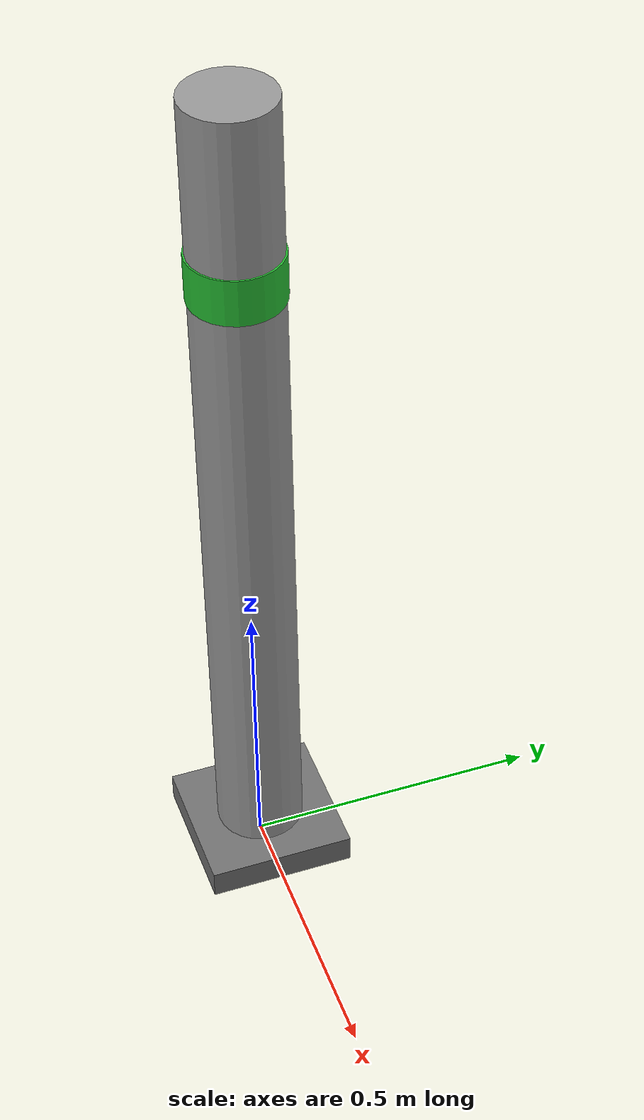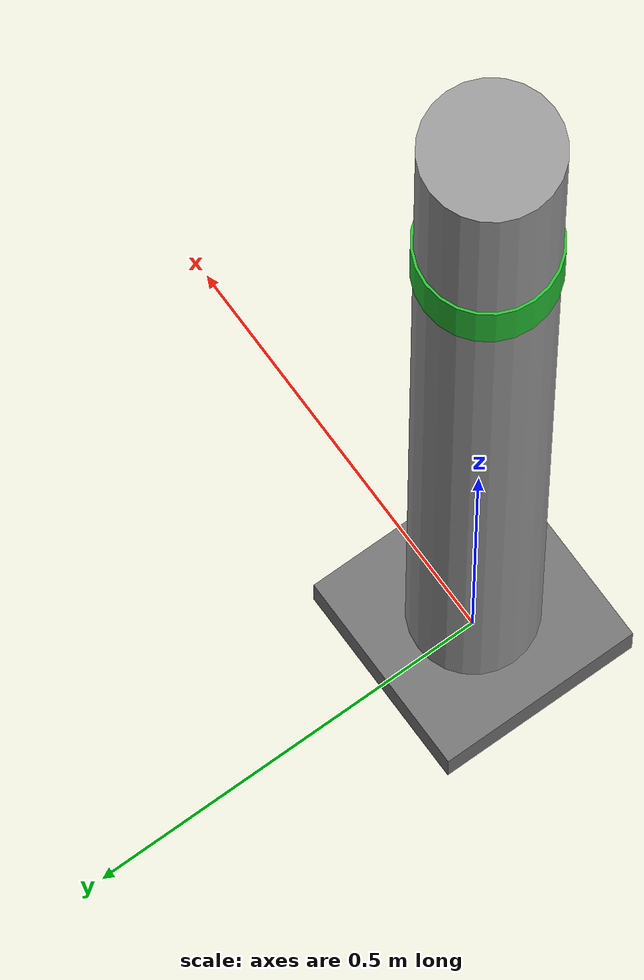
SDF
<?xml version="1.0"?>
<sdf version="1.9">
  <model name="sewer_pipe">
    <static>true</static>

    <plugin filename="gz-sim-label-system" name="gz::sim::systems::Label">
      <label>1</label>
    </plugin>

    <!-- ── Pipe body (12-sided prism approximating cylinder) ─────────────── -->
    <link name="pipe_body">
      <pose>0 0 0.75 0 0 0</pose>

      <visual name="pipe_visual">
        <geometry>
          <cylinder>
            <radius>0.075</radius>
            <length>1.50</length>
          </cylinder>
        </geometry>
        <material>
          <ambient>0.55 0.55 0.55 1</ambient>
          <diffuse>0.60 0.60 0.60 1</diffuse>
        </material>
      </visual>

      <collision name="pipe_collision">
        <geometry>
          <cylinder>
            <radius>0.075</radius>
            <length>1.50</length>
          </cylinder>
        </geometry>
      </collision>
    </link>

    <!-- ── Green identification band ─────────────────────────────────────── -->
    <link name="green_band">
      <pose>0 0 1.20 0 0 0</pose>

      <visual name="band_visual">
        <geometry>
          <cylinder>
            <radius>0.078</radius>
            <length>0.08</length>
          </cylinder>
        </geometry>
        <material>
          <ambient>0.1 0.7 0.15 1</ambient>
          <diffuse>0.15 0.75 0.2 1</diffuse>
        </material>
      </visual>
    </link>

    <!-- ── Base flange ──────────────────────────────────────────────────── -->
    <link name="base_flange">
      <pose>0 0 0.025 0 0 0</pose>

      <visual name="base_visual">
        <geometry>
          <box>
            <size>0.25 0.25 0.05</size>
          </box>
        </geometry>
        <material>
          <ambient>0.4 0.4 0.4 1</ambient>
          <diffuse>0.45 0.45 0.45 1</diffuse>
        </material>
      </visual>

      <collision name="base_collision">
        <geometry>
          <box>
            <size>0.25 0.25 0.05</size>
          </box>
        </geometry>
      </collision>
    </link>

  </model>
</sdf>
